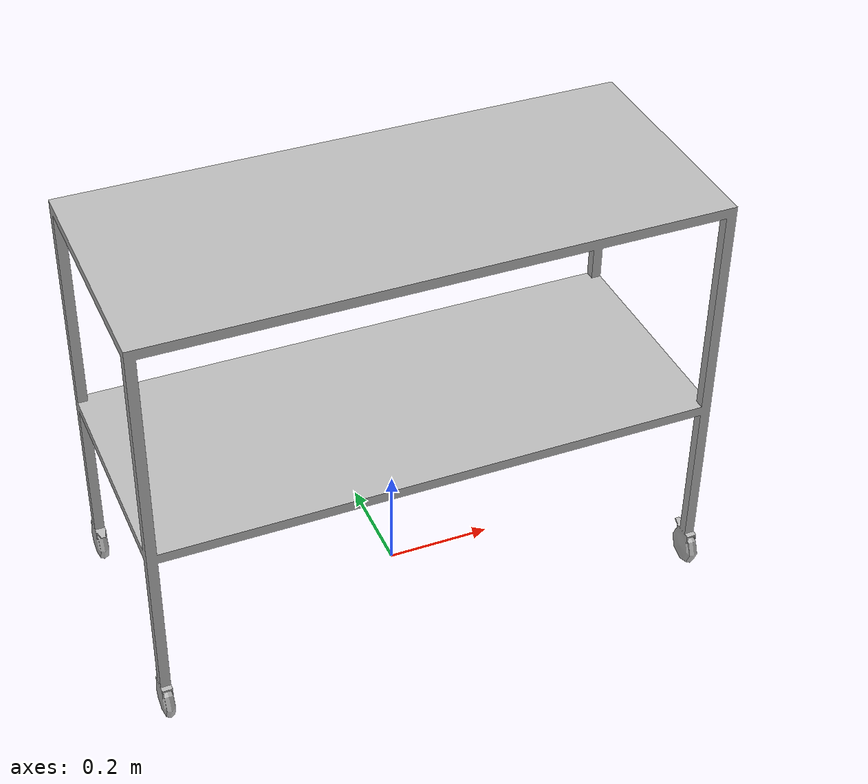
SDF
<sdf version="1.6">
  <model name="SmallTrolley">
   <static>true</static>
    <link name="body">
      <pose>0 0 0 0 0 0</pose>

      <visual name="visual">
        <geometry>
          <mesh>
            <uri>model://SmallTrolley/meshes/SmallTrolley.obj</uri>
          </mesh>
        </geometry>
      </visual>

      <collision name="collision">
        <geometry>
          <mesh>
            <uri>model://SmallTrolley/meshes/SmallTrolley.obj</uri>
          </mesh>
        </geometry>
      </collision>

    </link>
  </model>
</sdf>
